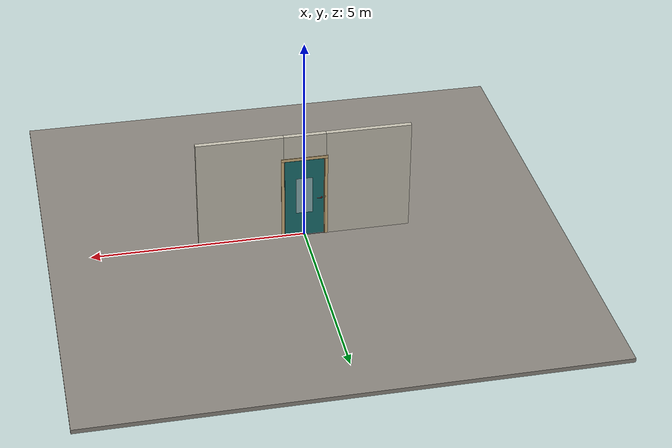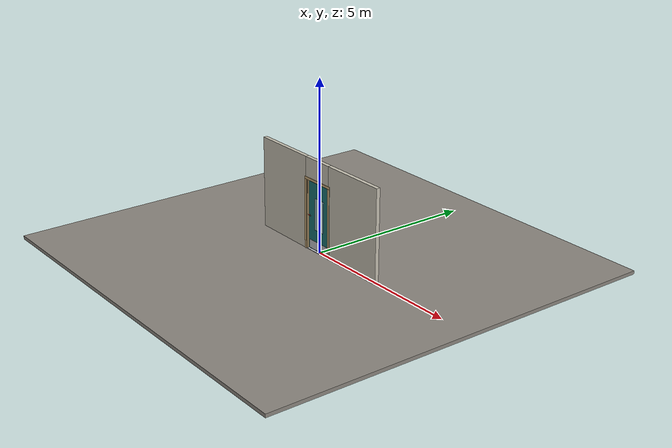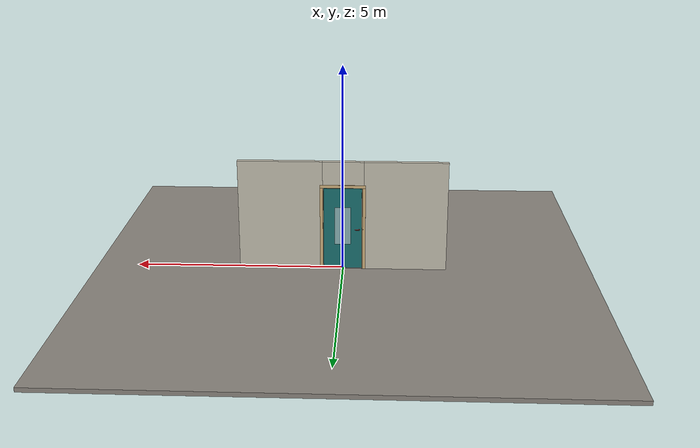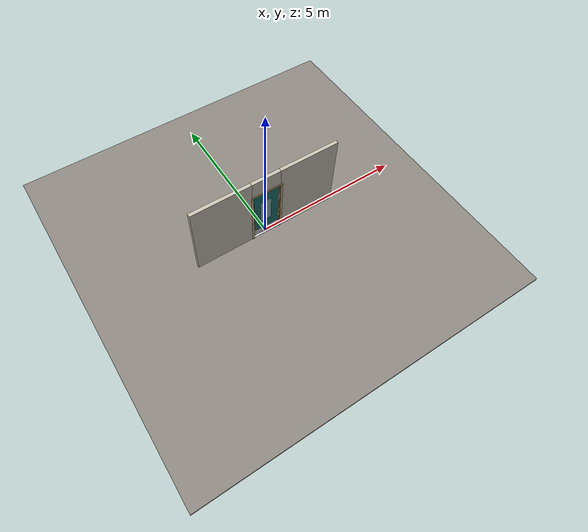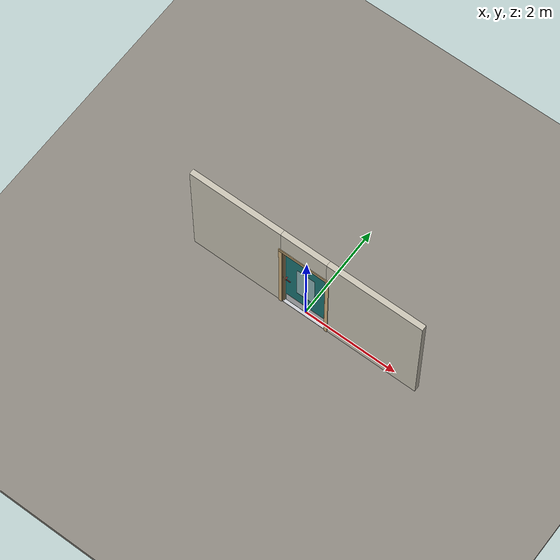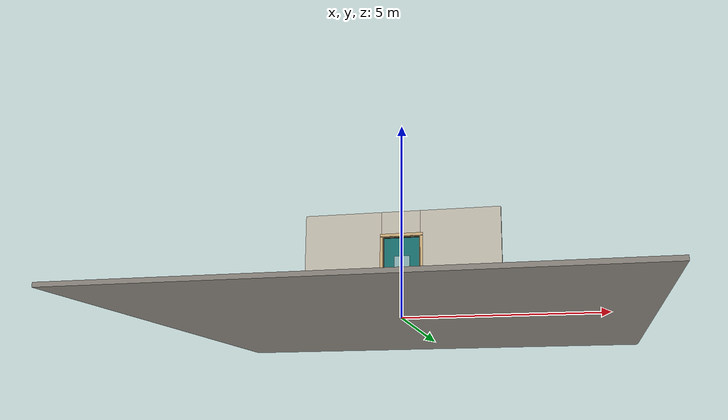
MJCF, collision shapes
<?xml version="1.0" ?>
<mujoco model="db0252_swing_single_full">
  <compiler angle="radian" meshdir="../../hardware" texturedir="../../textures" autolimits="true" inertiafromgeom="false"/>
  <option timestep="0.002" integrator="implicitfast" cone="elliptic" impratio="10" noslip_iterations="3">
    <flag multiccd="enable"/>
  </option>
  <size memory="16M"/>
  <default>
    <geom condim="4" solref="0.005 1" solimp="0.95 0.99 0.001"/>
    <joint solreflimit="0.005 1" solimplimit="0.95 0.99 0.001"/>
    <tendon solreflimit="0.005 1"/>
    <equality solref="0.002 1"/>
  </default>
  <visual>
    <headlight ambient="0.4 0.4 0.4" diffuse="0.7 0.7 0.7" specular="0.2 0.2 0.2"/>
    <quality shadowsize="4096"/>
    <map znear="0.01" zfar="60"/>
  </visual>
  <asset>
    <mesh name="hinge_2af0f4d6ca" file="hinge_2af0f4d6ca.obj"/>
    <mesh name="hinge_jamb_c0c0a62ada" file="hinge_jamb_c0c0a62ada.obj"/>
    <mesh name="lever_748f08efca" file="lever_748f08efca.obj"/>
    <material name="mat_floor" rgba="0.55 0.53 0.5 1" specular="0.2" shininess="0.15" reflectance="0"/>
    <material name="mat_wall" rgba="0.78 0.76 0.7 1" specular="0.2" shininess="0.1" reflectance="0"/>
    <material name="mat_leaf" rgba="0.1 0.45 0.45 1" specular="0.23" shininess="0.39" reflectance="0.02"/>
    <material name="mat_glass" rgba="0.9 0.93 0.95 0.6" specular="0.2" shininess="0.5" reflectance="0.1"/>
    <material name="mat_hinge" rgba="0.65 0.66 0.68 1" specular="0.74" shininess="0.5" reflectance="0.36"/>
    <material name="mat_op_chrome" rgba="0.9 0.9 0.92 1" specular="0.8" shininess="0.9" reflectance="0.4"/>
    <material name="mat_trim" rgba="0.85 0.66 0.3 1" specular="0.8" shininess="0.75" reflectance="0.4"/>
    <material name="mat_keyway" rgba="0.05 0.05 0.05 1" specular="0.2" shininess="0.5" reflectance="0"/>
    <material name="mat_bolt" rgba="0.75 0.76 0.77 1" specular="0.8" shininess="0.65" reflectance="0.4"/>
    <material name="mat_frame" rgba="0.82 0.7 0.5 1" specular="0.2" shininess="0.45" reflectance="0"/>
    <material name="mat_seal" rgba="0.1 0.1 0.1 1" specular="0.2" shininess="0.1" reflectance="0"/>
    <material name="mat_threshold" rgba="0.8 0.81 0.83 1" specular="0.8" shininess="0.6" reflectance="0.4"/>
    <material name="mat_kick" rgba="0.75 0.76 0.77 1" specular="0.8" shininess="0.65" reflectance="0.4"/>
    <texture name="skybox" type="skybox" builtin="gradient" rgb1="0.6 0.7 0.85" rgb2="0.9 0.92 0.95" width="256" height="256"/>
  </asset>
  <worldbody>
    <light name="sun" pos="1.5 -2.5 4" dir="-0.3 0.5 -0.8" directional="true" diffuse="0.8 0.8 0.8" specular="0.3 0.3 0.3" castshadow="true"/>
    <light name="fill" pos="-1.5 2.5 3" dir="0.3 -0.5 -0.7" directional="true" diffuse="0.35 0.35 0.4" castshadow="false"/>
    <camera name="robot_view" pos="0 -2.570688 1.734312" xyaxes="1 0 0 0 0.26963 0.962964" fovy="52"/>
    <camera name="far_view" pos="0 2.513687 1.734312" xyaxes="-1 0 0 0 -0.26963 0.962964" fovy="52"/>
    <camera name="iso" pos="-1.932062 -2.163938 2.141063" xyaxes="0.741536 -0.670913 0 0.242917 0.268487 0.932151" fovy="46"/>
    <camera name="detail_handle" pos="-0.1319 -0.877 1.296" xyaxes="0.97561 0.219512 0 -0.070934 0.315262 0.94635" fovy="38"/>
    <geom name="floor" type="box" size="6 6 0.05" pos="0 0 -0.05" material="mat_floor" group="0" contype="1" conaffinity="1" friction="0.8 0.005 0.0001" density="2400"/>
    <geom name="wall_left" type="box" size="0.99525 0.0575 1.35" pos="-1.50475 -0.0285 1.35" material="mat_wall" group="0" contype="1" conaffinity="1" friction="0.6 0.005 0.0001" density="800"/>
    <geom name="wall_right" type="box" size="1.01025 0.0575 1.35" pos="1.48975 -0.0285 1.35" material="mat_wall" group="0" contype="1" conaffinity="1" friction="0.6 0.005 0.0001" density="800"/>
    <geom name="wall_header" type="box" size="0.4945 0.0575 0.303" pos="-0.015 -0.0285 2.397" material="mat_wall" group="0" contype="1" conaffinity="1" friction="0.6 0.005 0.0001" density="800"/>
    <geom name="hinge_0_jamb" type="mesh" mesh="hinge_jamb_c0c0a62ada" pos="0.4575 0.029 0.267" quat="0 0 0 1" material="mat_hinge" group="1" contype="0" conaffinity="0" density="7850"/>
    <geom name="hinge_1_jamb" type="mesh" mesh="hinge_jamb_c0c0a62ada" pos="0.4575 0.029 1.029" quat="0 0 0 1" material="mat_hinge" group="1" contype="0" conaffinity="0" density="7850"/>
    <geom name="hinge_2_jamb" type="mesh" mesh="hinge_jamb_c0c0a62ada" pos="0.4575 0.029 1.861" quat="0 0 0 1" material="mat_hinge" group="1" contype="0" conaffinity="0" density="7850"/>
    <geom name="jamb_hinge" type="box" size="0.0095 0.0575 1.0225" pos="0.47 -0.0285 1.0225" material="mat_frame" group="0" contype="1" conaffinity="1" friction="0.6 0.005 0.0001" density="400"/>
    <geom name="strike_1016_wall_n" type="box" size="0.0245 0.03975 0.015" pos="-0.485 -0.04625 1.016" material="mat_frame" group="0" contype="1" conaffinity="1" friction="0.6 0.005 0.0001" density="400"/>
    <geom name="strike_1016_wall_p" type="box" size="0.0245 0.008 0.015" pos="-0.485 0.0145 1.016" material="mat_frame" group="0" contype="1" conaffinity="1" friction="0.6 0.005 0.0001" density="400"/>
    <geom name="strike_1016_ramp" type="box" size="0.0245 0.016771 0.015" pos="-0.489913 0.026543 1.016" quat="0.973249 0 0 0.229753" material="mat_frame" group="0" contype="1" conaffinity="1" friction="0.12 0.005 0.0001" density="400"/>
    <geom name="strike_1016_back" type="box" size="0.0155 0.0065 0.015" pos="-0.494 0 1.016" material="mat_frame" group="0" contype="1" conaffinity="1" friction="0.6 0.005 0.0001" density="400"/>
    <geom name="jamb_strike_0" type="box" size="0.0245 0.0575 0.5005" pos="-0.485 -0.0285 0.5005" material="mat_frame" group="0" contype="1" conaffinity="1" friction="0.6 0.005 0.0001" density="400"/>
    <geom name="jamb_strike_1" type="box" size="0.0245 0.0575 0.507" pos="-0.485 -0.0285 1.538" material="mat_frame" group="0" contype="1" conaffinity="1" friction="0.6 0.005 0.0001" density="400"/>
    <geom name="jamb_head" type="box" size="0.4945 0.0575 0.0095" pos="-0.015 -0.0285 2.0545" material="mat_frame" group="0" contype="1" conaffinity="1" friction="0.6 0.005 0.0001" density="400"/>
    <geom name="head_stud" type="box" size="0.4945 0.0575 0.015" pos="-0.015 -0.0285 2.079" material="mat_wall" group="0" contype="1" conaffinity="1" friction="0.6 0.005 0.0001" density="500"/>
    <geom name="stop_hinge" type="box" size="0.0055 0.016 1.0225" pos="0.455 -0.0385 1.0225" material="mat_frame" group="0" contype="1" conaffinity="1" friction="0.6 0.005 0.0001" density="400"/>
    <geom name="stop_strike" type="box" size="0.0055 0.016 1.0225" pos="-0.455 -0.0385 1.0225" material="mat_frame" group="0" contype="1" conaffinity="1" friction="0.6 0.005 0.0001" density="400"/>
    <geom name="stop_head" type="box" size="0.4605 0.016 0.0055" pos="0 -0.0385 2.0395" material="mat_frame" group="0" contype="1" conaffinity="1" friction="0.6 0.005 0.0001" density="400"/>
    <geom name="seal_hinge" type="box" size="0.004 0.003 1.0225" pos="0.4575 -0.025 1.0225" material="mat_seal" group="1" contype="0" conaffinity="0" density="1100"/>
    <geom name="seal_strike" type="box" size="0.004 0.003 1.0225" pos="-0.4575 -0.025 1.0225" material="mat_seal" group="1" contype="0" conaffinity="0" density="1100"/>
    <geom name="seal_head" type="box" size="0.4405 0.003 0.008" pos="0 -0.025 2.033" material="mat_seal" group="1" contype="0" conaffinity="0" density="1100"/>
    <geom name="casing_l_n" type="box" size="0.035 0.008 1.032" pos="-0.5095 -0.094 1.0225" material="mat_frame" group="2" contype="0" conaffinity="0" density="400"/>
    <geom name="casing_r_n" type="box" size="0.035 0.008 1.032" pos="0.5095 -0.094 1.0225" material="mat_frame" group="2" contype="0" conaffinity="0" density="400"/>
    <geom name="casing_h_n" type="box" size="0.5445 0.008 0.035" pos="0 -0.094 2.094" material="mat_frame" group="2" contype="0" conaffinity="0" density="400"/>
    <geom name="casing_l_p" type="box" size="0.035 0.008 1.032" pos="-0.5095 0.037 1.0225" material="mat_frame" group="2" contype="0" conaffinity="0" density="400"/>
    <geom name="casing_r_p" type="box" size="0.035 0.008 1.032" pos="0.5095 0.037 1.0225" material="mat_frame" group="2" contype="0" conaffinity="0" density="400"/>
    <geom name="casing_h_p" type="box" size="0.5445 0.008 0.035" pos="0 0.037 2.094" material="mat_frame" group="2" contype="0" conaffinity="0" density="400"/>
    <geom name="threshold" type="box" size="0.4795 0.0575 0.0065" pos="0 -0.0285 0.0065" material="mat_threshold" group="0" contype="1" conaffinity="1" friction="0.5 0.005 0.0001" density="2700"/>
    <site name="approach_point" pos="0 -1.5 0" quat="1 0 0 0" size="0.05" rgba="0.2 0.9 0.2 0.5" group="4"/>
    <site name="goal_point" pos="0 1.5 0" quat="1 0 0 0" size="0.05" rgba="0.2 0.9 0.2 0.5" group="4"/>
    <site name="door_plane_center" pos="0 0 1.0225" quat="1 0 0 0" size="0.02" rgba="0.2 0.9 0.2 0.5" group="4"/>
    <body name="leaf" pos="0.4605 0 0">
      <inertial pos="-0.450919 -0.00239 0.925457" mass="27.724355" quat="0.500095 -0.501763 -0.501012 -0.497118" diaginertia="1.983539266 10.63436419 12.607220904"/>
      <joint name="leaf_hinge" type="hinge" axis="0 0 -1" pos="-0.003 0.029 0" limited="true" range="0 1.745329" solreflimit="0.02 1" damping="2.25611" frictionloss="1.577267" stiffness="6.6" springref="-0.409091" armature="0.02"/>
      <geom name="leaf_slab" type="box" size="0.457 0.022 1.012" pos="-0.46 0 1.029" material="mat_leaf" group="0" contype="1" conaffinity="1" friction="0.4 0.005 0.0001" density="1"/>
      <geom name="leaf_glass_0" type="box" size="0.196053 0.0228 0.467544" pos="-0.46 0 1.091744" material="mat_glass" group="1" contype="0" conaffinity="0" density="1"/>
      <geom name="hinge_0" type="mesh" mesh="hinge_2af0f4d6ca" pos="-0.003 0.029 0.267" quat="0 0 0 1" material="mat_hinge" group="1" contype="0" conaffinity="0" density="7850"/>
      <geom name="hinge_1" type="mesh" mesh="hinge_2af0f4d6ca" pos="-0.003 0.029 1.029" quat="0 0 0 1" material="mat_hinge" group="1" contype="0" conaffinity="0" density="7850"/>
      <geom name="hinge_2" type="mesh" mesh="hinge_2af0f4d6ca" pos="-0.003 0.029 1.861" quat="0 0 0 1" material="mat_hinge" group="1" contype="0" conaffinity="0" density="7850"/>
      <geom name="leaf_latch_bolt_faceplate" type="box" size="0.0006 0.011 0.025" pos="-0.9164 0 1.016" material="mat_bolt" group="1" contype="0" conaffinity="0" density="8500"/>
      <geom name="kick_plate_n" type="box" size="0.427 0.0008 0.125" pos="-0.46 -0.0228 0.152" material="mat_kick" group="2" contype="0" conaffinity="0" density="7900"/>
      <site name="leaf_edge_mid" pos="-0.917 0 1.012" quat="1 0 0 0" size="0.02" rgba="0.2 0.9 0.2 0.5" group="4"/>
      <body name="leaf_handle" pos="-0.862 0 1.016">
        <inertial pos="0.023422 -0.001078 0" mass="0.875493" quat="0.703567 0 0 -0.710629" diaginertia="0.001203647 0.003417229 0.004483195"/>
        <joint name="leaf_handle_hinge" type="hinge" axis="0 1 0" limited="true" range="0 0.87" damping="0.205093" frictionloss="0.04" stiffness="0.9" springref="-0.444444" armature="0.01"/>
        <geom name="leaf_handle_spindle" type="cylinder" size="0.006 0.03" pos="0 0 0" quat="0.707107 -0.707107 0 0" material="mat_op_chrome" group="1" contype="0" conaffinity="0" density="7850"/>
        <geom name="leaf_handle_lever_n" type="mesh" mesh="lever_748f08efca" pos="0 -0.022 0" quat="0 0 -0.707107 0.707107" material="mat_op_chrome" group="1" contype="0" conaffinity="0" density="3000"/>
        <geom name="leaf_handle_lever_col_n" type="capsule" size="0.008 0.048" pos="0.056 -0.077 0" quat="0.707107 0 0.707107 0" material="mat_op_chrome" group="3" contype="1" conaffinity="1" rgba="0.8 0.3 0.3 0.25" friction="0.7 0.01 0.0001" density="3000"/>
        <geom name="leaf_handle_hub_col_n" type="cylinder" size="0.012 0.022" pos="0 -0.052 0" quat="0.707107 -0.707107 0 0" material="mat_op_chrome" group="3" contype="1" conaffinity="1" rgba="0.8 0.3 0.3 0.25" friction="0.6 0.005 0.0001" density="3000"/>
        <geom name="leaf_handle_cylinder_n" type="cylinder" size="0.0085 0.006" pos="0 -0.083 0" quat="0.707107 -0.707107 0 0" material="mat_trim" group="1" contype="0" conaffinity="0" density="7100"/>
        <geom name="leaf_handle_keyway_n" type="box" size="0.0012 0.0008 0.006" pos="0 -0.0895 0" material="mat_keyway" group="1" contype="0" conaffinity="0" density="7100"/>
        <geom name="leaf_handle_lever_p" type="mesh" mesh="lever_748f08efca" pos="0 0.022 0" quat="0 0 0.707107 0.707107" material="mat_op_chrome" group="1" contype="0" conaffinity="0" density="3000"/>
        <geom name="leaf_handle_lever_col_p" type="capsule" size="0.008 0.048" pos="0.056 0.077 0" quat="0.707107 0 0.707107 0" material="mat_op_chrome" group="3" contype="1" conaffinity="1" rgba="0.8 0.3 0.3 0.25" friction="0.7 0.01 0.0001" density="3000"/>
        <geom name="leaf_handle_hub_col_p" type="cylinder" size="0.012 0.022" pos="0 0.052 0" quat="0.707107 -0.707107 0 0" material="mat_op_chrome" group="3" contype="1" conaffinity="1" rgba="0.8 0.3 0.3 0.25" friction="0.6 0.005 0.0001" density="3000"/>
        <geom name="leaf_handle_turn_button_p" type="cylinder" size="0.006 0.005" pos="0 0.086 0" quat="0.707107 -0.707107 0 0" material="mat_trim" group="1" contype="0" conaffinity="0" density="7100"/>
        <site name="leaf_handle_grip_n" pos="0.0896 -0.077 0" quat="1 0 0 0" size="0.012" rgba="0.2 0.9 0.2 0.5" group="4"/>
        <site name="leaf_handle_grip_p" pos="0.0896 0.077 0" quat="1 0 0 0" size="0.012" rgba="0.2 0.9 0.2 0.5" group="4"/>
      </body>
      <body name="leaf_latch_bolt" pos="-0.917 0 1.016">
        <inertial pos="0.008 0 0" mass="0.027149" quat="0 0 -0.707107 0.707107" diaginertia="0.000000328 0.000003943 0.000003943"/>
        <joint name="leaf_latch_bolt_slide" type="slide" axis="1 0 0" limited="true" range="0 0.014" damping="2" frictionloss="0.3" stiffness="400" springref="-0.01" armature="0.1"/>
        <geom name="leaf_latch_bolt_capsule" type="capsule" size="0.005 0.017" pos="0.008 0 0" quat="0.707107 0 -0.707107 0" material="mat_bolt" group="0" contype="1" conaffinity="1" friction="0.2 0.005 0.0001" density="8500"/>
      </body>
    </body>
  </worldbody>
  <tendon>
    <fixed name="leaf_latch_bolt_coupling" limited="true" range="0 10">
      <joint joint="leaf_latch_bolt_slide" coef="1"/>
      <joint joint="leaf_handle_hinge" coef="-0.017722"/>
    </fixed>
  </tendon>
  <sensor>
    <jointpos name="leaf_hinge_pos" joint="leaf_hinge"/>
    <jointvel name="leaf_hinge_vel" joint="leaf_hinge"/>
    <jointpos name="leaf_handle_hinge_pos" joint="leaf_handle_hinge"/>
    <jointvel name="leaf_handle_hinge_vel" joint="leaf_handle_hinge"/>
    <jointpos name="leaf_latch_bolt_slide_pos" joint="leaf_latch_bolt_slide"/>
    <jointvel name="leaf_latch_bolt_slide_vel" joint="leaf_latch_bolt_slide"/>
  </sensor>
</mujoco>
